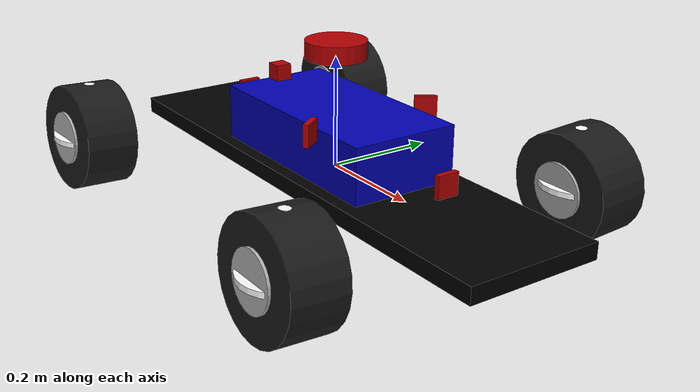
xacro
<?xml version="1.0"?>
<robot name="dorothy" xmlns:xacro="http://www.ros.org/wiki/xacro">
    <xacro:include filename="body.xacro" />
    <xacro:include filename="pod.xacro" />
    <xacro:include filename="wheel.xacro" />
  <xacro:property name="body_h" value="0.03" />
  <xacro:property name="pod_h" value="0.1" />
    <link name="base_link">
    </link>
    <joint name="body_joint" type="fixed">
        <parent link="base_link" />
        <child link="body_link" />
    </joint>

    <joint name="pod_joint" type="fixed">
        <parent link="body_link" />
        <child link="pod" />
        <origin xyz="0 0 ${(pod_h+body_h)/2}" rpy="0 0 3.14" />
    </joint>
    <link name="base_footprint">
    </link>
    <joint name="footprint_joint" type="fixed">
        <child link="base_link" />
        <parent link="base_footprint" />
    </joint>

    <xacro:make_wheel prefix="left_front" reflect="1" xyz="${wheels_lf} ${wheels_w} 0" steerable="1" toe="0" wheel_base_link="body_link" />
    <xacro:make_wheel prefix="right_front" reflect="-1" xyz="${wheels_lf} ${-wheels_w} 0" steerable="1" toe="0" wheel_base_link="body_link"/>
    <xacro:make_wheel prefix="left_back" reflect="1" xyz="${-wheels_lb} ${wheels_w} 0" steerable="0" toe="${2.5*M_PI/180}" wheel_base_link="body_link"/>
    <xacro:make_wheel prefix="right_back" reflect="-1" xyz="${-wheels_lb} ${-wheels_w} 0" steerable="0" toe="${2.5*M_PI/180}" wheel_base_link="body_link"/>

    <gazebo>
        <plugin name="ArduCopter_Plugin" filename="libArduPilotPlugin.so">
            <fdm_addr>127.0.0.1</fdm_addr>
            <fdm_port_in>9002</fdm_port_in>
            <fdm_port_out>9003</fdm_port_out>
            <modelXYZToAirplaneXForwardZDown>0 0 0 ${M_PI} 0 0</modelXYZToAirplaneXForwardZDown>
            <gazeboXYZToNED>0 0 0 ${M_PI} 0 0</gazeboXYZToNED>
            <imuName>imu_sensor</imuName>
            <connectionTimeoutMaxCount>5</connectionTimeoutMaxCount>

            <xacro:macro name="wheel_drive" params="joint">
                <control channel="2">
                    <type>VELOCITY</type>
                    <offset>-0.5</offset>
                    <p_gain>10</p_gain>
                    <jointName>${joint}_hub_to_wheel</jointName>
                    <multiplier>150</multiplier>
                </control>
            </xacro:macro>
            <xacro:wheel_drive joint="left_back" />
            <xacro:wheel_drive joint="left_front" />
            <xacro:wheel_drive joint="right_back" />
            <xacro:wheel_drive joint="right_front" />

            <xacro:macro name="steer_drive" params="joint">
                <control channel="0">
                    <type>POSITION</type>
                    <offset>-0.5</offset>
                    <p_gain>30</p_gain>
                    <cmd_max>100</cmd_max>
                    <cmd_min>-100</cmd_min>
                    <jointName>${joint}_strut_to_strut_dummy</jointName>
                    <multiplier>${M_PI/2}</multiplier>
                </control>
            </xacro:macro>
            <xacro:steer_drive joint="left_front" />
            <xacro:steer_drive joint="right_front" />
        </plugin>

    </gazebo>
</robot>

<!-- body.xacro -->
<robot xmlns:xacro="http://ros.org/wiki/xacro">
    <material name="Body_Gray">
        <color rgba="0.0 0.0 0.0 1.0" />
    </material>
    <xacro:macro name="make_body">
        <xacro:property name="w" value="0.25" />
        <xacro:property name="h" value="0.03" />
        <xacro:property name="l" value="1" />
        <xacro:property name="m" value="0.5" />
        <xacro:include filename="lib.xacro" />

        <link name="body_link">
            <visual>
                <geometry>
                    <box size="${l} ${w} ${h}" />
                </geometry>
                <material name="Body_Gray" />
            </visual>
            <collision>
                <geometry>
                    <box size=" ${l} ${w} ${h}" />
                </geometry>
            </collision>
            <xacro:box_inertia m="${m}" x="${l}" y="${w}" z="${h}" />
        </link>
        <gazebo reference="body_link">
            <material value="Gazebo/Wood" />
            <sensor name="imu_sensor" type="imu">
                <always_on>1</always_on>
                <gravity>true</gravity>
                <update_rate>1000.0</update_rate>
            </sensor>
        </gazebo>

    </xacro:macro>
    <xacro:make_body />

</robot>

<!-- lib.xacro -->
<robot xmlns:xacro="http://ros.org/wiki/xacro">

  <xacro:property name="M_PI" value="3.14159" />

  <xacro:macro name="cylinder_inertia" params="m r h">
    <inertial>
      <mass value="${m}" />
      <inertia ixx="${m*(3*r*r+h*h)/12}" ixy="0" ixz="0" iyy="${m*(3*r*r+h*h)/12}" iyz="0" izz="${m*r*r/2}" />
    </inertial>
  </xacro:macro>

  <xacro:macro name="box_inertia" params="m x y z">
    <inertial>
      <mass value="${m}" />
      <inertia ixx="${m*(y*y+z*z)/12}" ixy="0" ixz="0" iyy="${m*(x*x+z*z)/12}" iyz="0" izz="${m*(x*x+z*z)/12}" />
    </inertial>
  </xacro:macro>

  <xacro:macro name="sphere_inertia" params="m r">
    <inertial>
      <mass value="${m}" />
      <mass value="${m}" />
      <inertial ixx="${2*m*r*r/5}" ixy="0" ixz="0" iyy="${2*m*r*r/5}" iyz="0" izz="${2*m*r*r/5}" />
    </inertial>
  </xacro:macro>
  <xacro:macro name="zero_inertia">
    <xacro:sphere_inertia m="0.01" r="0.01" />
  </xacro:macro>

  <xacro:macro name="transmission" params="joint">
    <ros2_control name="GazeboSystem" type="system">
      <hardware>
        <plugin>gazebo_ros2_control/GazeboSystem</plugin>
      </hardware>
      <joint name="${joint}">
        <command_interface name="effort">
          <param name="min">-1000</param>
          <param name="max">1000</param>
        </command_interface>
        <state_interface name="position">
          <param name="initial_value">0.0</param>
        </state_interface>
        <state_interface name="velocity"/>
        <state_interface name="effort"/>
      </joint>
    </ros2_control>
  </xacro:macro>

  <xacro:macro name="cam" params="suffix xyz rpy pod_link_name">
    <link name="camera_${suffix}">
      <visual>
        <origin xyz="0 0 0.0" rpy="0 0 0" />
        <geometry>
          <box size="0.01 0.04 0.04" />
        </geometry>
        <material name="red" />
      </visual>
      <collision>
        <geometry>
          <box size="0.01 0.04 0.04" />
        </geometry>
      </collision>

      <inertial>
        <mass value="0.01" />
        <origin xyz="0 0 0" />
        <inertia ixx="0.0001" ixy="0.0" ixz="0.0" iyy="0.0001" iyz="0.0" izz="0.0001" />
      </inertial>
    </link>

    <gazebo reference="camera_${suffix}">
      <material>Gazebo/Red</material>
      <sensor name="camera_${suffix}_sensor" type="camera">
        <camera>
          <horizontal_fov>1.5</horizontal_fov>
          <image>
            <width>640</width>
            <height>480</height>
          </image>
          <clip>
            <near>0.1</near>
            <far>1000</far>
          </clip>
        </camera>
        <always_on>1</always_on>
        <update_rate>10</update_rate>
        <visualize>false</visualize>
        <camera name="camera_${suffix}">
          <distortion>
            <k1>0.0</k1>
            <k2>0.0</k2>
            <k3>0.0</k3>
            <p1>0.0</p1>
            <p2>0.0</p2>
            <center> 0.5 0.5 </center>
          </distortion>
        </camera>

        <plugin name="camera_controller" filename="libgazebo_ros_camera.so">

          <ros>
            <namespace></namespace>
          </ros>
          <hack_baseline>0.07</hack_baseline>
          <frame_name>camera_${suffix}</frame_name>
        </plugin>
      </sensor>
    </gazebo>

    <joint name="cam_joint_${suffix}" type="fixed">
      <parent link="${pod_link_name}" />
      <child link="camera_${suffix}" />
      <origin xyz="${xyz}" rpy="${rpy}" />
    </joint>

    <gazebo reference="cam_joint_${suffix}">
        <preserveFixedJoint>true</preserveFixedJoint>
    </gazebo>
  </xacro:macro>

</robot>

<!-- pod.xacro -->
<robot xmlns:xacro="http://ros.org/wiki/xacro">

  <xacro:property name="M_PI" value="3.14159" />
  <xacro:property name="lidar_height_from_pod" value="0.15" />
  <xacro:property name="pod_x" value="0.4"/>
  <xacro:property name="pod_y" value="0.2"/>
  <xacro:property name="pod_z" value="0.1"/>
  <xacro:include filename="lib.xacro" />
  <material name="blue">
    <color rgba="0 0 .7 1" />
  </material>
  <material name="red">
    <color rgba="0.7 0 0 1" />
  </material>

  <link name="pod">
    <visual>
      <origin xyz="0 0 0.0" rpy="0 0 0" />
      <geometry>
        <box size="${pod_x} ${pod_y} ${pod_z}" />
      </geometry>
      <material name="blue" />
    </visual>
    <collision>
      <geometry>
        <box size="${pod_x} ${pod_y} ${pod_z}" />
      </geometry>
    </collision>

    <inertial>
      <mass value="0.1" />
      <origin xyz="0 0 0" />
      <inertia ixx="0.001" ixy="0.0" ixz="0.0" iyy="0.001" iyz="0.0" izz="0.001" />
    </inertial>
  </link>

  <!--_LIDAR -->
  <link name="laser">
    <visual>
      <origin xyz="0 0 0.0" rpy="0 0 0" />
      <geometry>
        <cylinder length="0.0315" radius="0.055" />
      </geometry>
      <material name="red"/>
    </visual>

    <collision>
      <origin xyz="0.015 0 -0.0065" rpy="0 0 0" />
      <geometry>
        <cylinder length="0.0315" radius="0.055" />
      </geometry>
    </collision>

    <inertial>
      <mass value="0.114" />
      <origin xyz="0 0 0" />
      <inertia ixx="0.001" ixy="0.0" ixz="0.0" iyy="0.001" iyz="0.0" izz="0.001" />
    </inertial>
  </link>

  <gazebo reference="laser">
    <material>Gazebo/FlatBlack</material>
    <sensor type="ray" name="lidar_sensor">
      <pose>0 0 0 0 0 0</pose>
      <visualize>false</visualize>
      <update_rate>15</update_rate>
      <ray>
        <scan>
          <horizontal>
            <samples>360</samples>
            <resolution>1</resolution>
            <min_angle>0.0</min_angle>
            <max_angle>6.28319</max_angle>
          </horizontal>
        </scan>
        <range>
          <min>0.120</min>
          <max>10.0</max>
          <resolution>0.050</resolution>
        </range>
        <noise>
          <type>gaussian</type>
          <mean>0.0</mean>
          <stddev>0.01</stddev>
        </noise>
      </ray>
      <plugin name="scan" filename="libgazebo_ros_ray_sensor.so">
        <ros>
          <remapping>~/out:=scan</remapping>
        </ros>
        <output_type>sensor_msgs/LaserScan</output_type>
        <frame_name>laser</frame_name>
      </plugin>
    </sensor>
  </gazebo>
  <joint name="scan_joint" type="fixed">
    <parent link="pod" />
    <child link="laser" />
    <origin xyz="0 0 ${lidar_height_from_pod}" rpy="0 0 3.14" />
  </joint>
  <gazebo reference="scan_joint">
    <preserveFixedJoint>true</preserveFixedJoint>
  </gazebo>

  <!-- IMU -->
  <link name="imu">
    <visual>
      <origin xyz="0 0 0.0" rpy="0 0 0" />
      <geometry>
        <box  size="0.03 0.03 0.03" />
      </geometry>
      <material name="red"/>
    </visual>

    <collision>
      <origin xyz="0 0 0" rpy="0 0 0" />
      <geometry>
        <box length="0.03" width="0.03" height="0.03" />
      </geometry>
    </collision>

    <inertial>
      <mass value="0.114" />
      <origin xyz="0 0 0" />
      <inertia ixx="0.001" ixy="0.0" ixz="0.0" iyy="0.001" iyz="0.0" izz="0.001" />
    </inertial>
  </link>
  <gazebo reference="imu">
    <material>Gazebo/FlatBlack</material>

    <sensor name="my_imu" type="imu">
      <always_on>true</always_on>
      <!-- Publish at 30 hz -->
      <update_rate>30</update_rate>
      <plugin name="my_imu_plugin" filename="libgazebo_ros_imu_sensor.so">
        <ros>
          <!-- Will publish to /imu/data -->
          <namespace>/imu</namespace>
          <remapping>~/out:=data</remapping>
        </ros>
        <!-- frame_name ommited, will be "my_link" -->
      </plugin>
    </sensor>
  </gazebo>
  <joint name="imu_joint" type="fixed">
    <parent link="pod" />
    <child link="imu" />
    <origin xyz="${(pod_x-0.03)/2} 0 ${(pod_z+0.03)/2}" rpy="0 0 3.14" />
  </joint>
  <gazebo reference="imu_joint">
    <preserveFixedJoint>true</preserveFixedJoint>
  </gazebo>

  <xacro:cam suffix="front" xyz="0.3 0.0 0.0" rpy="0 0 ${0}" pod_link_name="pod"/>
  <xacro:cam suffix="right" xyz="-0.1 -0.12 0.05" rpy="0 0 ${-M_PI/5}" pod_link_name="pod"/>
  <xacro:cam suffix="left" xyz="-0.1 0.12 0.05" rpy="0 0 ${M_PI/5}" pod_link_name="pod"/>
  <xacro:cam suffix="rear" xyz="-0.3 0.0 0.0" rpy="0 0 ${M_PI}" pod_link_name="pod"/>

</robot>

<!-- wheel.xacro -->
<!-- Macros and impelemnatation of wheels, suspensions and steering system -->

<robot xmlns:xacro="http://ros.org/wiki/xacro">
    <!-- Ros materials -->
    <material name="Wheel_Black">
        <color rgba="0.1 0.1 0.1 1" />
    </material>
    <material name="Wheel_Silver">
        <color rgba="0.7 0.7 0.7 1" />
    </material>
    <material name="Mechanical">
        <color rgba="1.0 1.0 1.0 1.0" />
    </material>
    <xacro:include filename="lib.xacro" />

    <xacro:property name="wheels_w" value="0.3" />
    <xacro:property name="wheels_lf" value="0.3" />
    <xacro:property name="wheels_lb" value="0.4" />

    <!-- Main wheel & steerins and suspension macro -->
    <xacro:macro name="make_wheel" params="prefix reflect xyz steerable toe wheel_base_link">
        <xacro:property name="w" value="0.1" />
        <xacro:property name="r" value="0.1" />
        <xacro:property name="m" value="0.1" />
        <xacro:property name="camber" value="${-3.0*M_PI/180}" />
        <xacro:property name="castor" value="0.0" />

        <!-- Wheel link -->
        <link name="${prefix}_wheel_link">
            <visual>
                <geometry>
                    <cylinder radius="${r}" length="${w}" />
                </geometry>
                <material name="Wheel_Black" />
            </visual>
            <collision>
                <geometry>
                    <cylinder radius="${r}" length="${w}" />
                </geometry>
            </collision>
            <xacro:cylinder_inertia m="${m}" r="${r}" h="${w}" />
        </link>
        <gazebo reference="${prefix}_wheel_link">
            <material value="Gazebo/Black" />
            <mu1>1.0</mu1>
            <mu2>1.0</mu2>
            <slip1>100.0</slip1>
            <fdir1>0.0 0.0 1.0</fdir1>
        </gazebo>

        <!-- Hub link is the non rotating part which the bearing gos on -->
        <!-- The bearing is modeled as continuous joint -->
        <!-- The join is used to control the velocity of the vehicle -->
        <link name="${prefix}_hub_link">
            <visual>
                <geometry>
                    <cylinder radius="${r/2}" length="${w*1.1}" />
                </geometry>
                <material name="Wheel_Silver" />
            </visual>
            <xacro:cylinder_inertia m="0.01" r="0.1" h="0.1" />
        </link>
        <gazebo reference="${prefix}_hub_link">
            <material value="Gazebo/Bricks" />
        </gazebo>
        <joint name="${prefix}_hub_to_wheel" type="continuous">
            <axis xyz="0 0 1" />
            <parent link="${prefix}_hub_link" />
            <child link="${prefix}_wheel_link" />
            <dynamics damping="0.001" friction="0.0001" />
        </joint>
        <!-- This is the lower part of a car strut.
        It is rigidly connected to the hub and fixes the camber angle -->
        <link name="${prefix}_strut_link">
            <visual>
                <geometry>
                    <cylinder radius="${r/10}" length="${r*2}" />
                </geometry>
                <material name="Mechanical" />
            </visual>
            <xacro:cylinder_inertia m="0.01" r="0.1" h="0.1" />
        </link>
        <gazebo reference="${prefix}_strut_link">
            <material value="Gazebo/GreyTransparent " />
        </gazebo>
        <joint name="${prefix}_strut_to_hub" type="fixed">
            <parent link="${prefix}_strut_dummy_link" />
            <child link="${prefix}_hub_link" />
            <origin rpy="0 ${M_PI/2} 0 " />
        </joint>

        <link name="${prefix}_strut_dummy_link">
            <xacro:cylinder_inertia m="0.01" r="0.1" h="0.1" />
        </link>
        <xacro:if value="${steerable}">
            <joint name="${prefix}_strut_to_strut_dummy" type="revolute">
                <limit lower="${-M_PI/3}" upper="${+M_PI/3}" effort="100" velocity="1" />
                <parent link="${prefix}_strut_link" />
                <child link="${prefix}_strut_dummy_link" />
                <axis xyz="0 0 -1" />
                <origin rpy="0 0 0" />
                <dynamics damping="0.0" friction="0" />
            </joint>
        </xacro:if>
        <xacro:unless value="${steerable}">
            <joint name="${prefix}_strut_to_strut_dummy" type="fixed">
                <parent link="${prefix}_strut_link" />
                <child link="${prefix}_strut_dummy_link" />
            </joint>
        </xacro:unless>

        <gazebo reference="${prefix}_strut_to_strut_dummy">
            <empty></empty>
        </gazebo>
        <!-- Next we create the slider -->
        <link name="${prefix}_strut_base_link">
            <visual>
                <geometry>
                    <cylinder radius="${.7*w}" length="${r/10}" />
                </geometry>
                <material name="Mechanical" />
            </visual>
            <xacro:cylinder_inertia m="0.01" r="0.1" h="0.1" />
        </link>
        <gazebo reference="${prefix}_strut_base_link">
            <material value="Gazebo/GreyTransparent " />
        </gazebo>

        <joint name="${prefix}_strut_base_to_strut" type="prismatic">
            <limit lower="-0.05" upper="+0.05" effort="1" velocity="1" />
            <parent link="${prefix}_strut_base_link" />
            <child link="${prefix}_strut_link" />
            <axis xyz="0 0 1" />
            <origin rpy="${castor} ${reflect*camber} ${-reflect*toe}" />
            <dynamics damping="5" friction="0.0" />
        </joint>
        <gazebo reference="${prefix}_strut_base_to_strut">
            <springStiffness>100</springStiffness>
            <implicitSpringDamper>true</implicitSpringDamper>
            <springReference>-0.07</springReference>
        </gazebo>

        <!-- The pose of one wheel subsystem with relation to the body -->
            <joint name="${prefix}_wheel_base_to_strut" type="fixed">
                <parent link="${wheel_base_link}" />
                <child link="${prefix}_strut_base_link" />
                <origin xyz="${xyz}" rpy="0 0 ${M_PI/2}" />
            </joint>

    </xacro:macro>
</robot>
